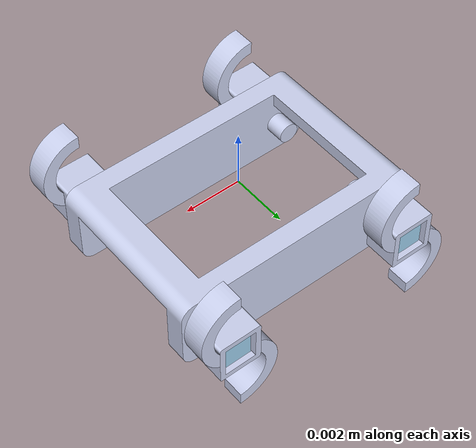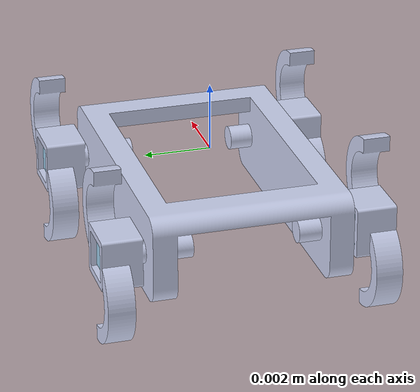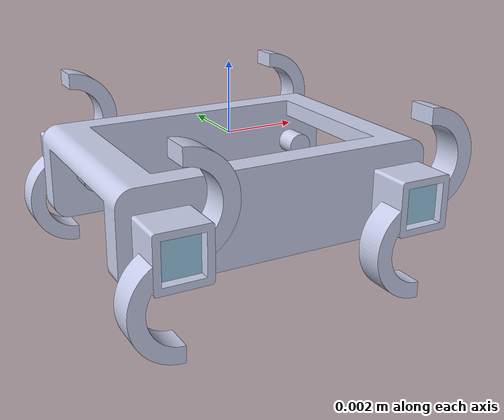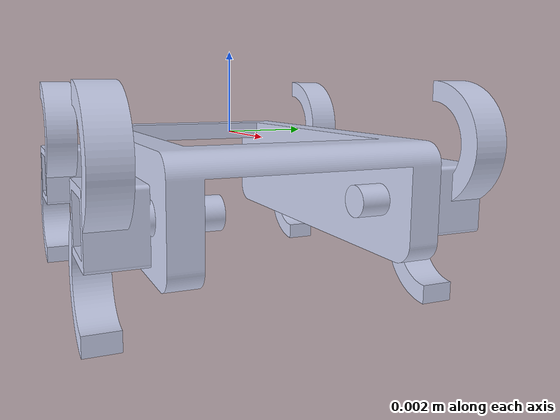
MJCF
<?xml version="1.0" ?>
<!-- Generated using onshape-to-robot -->
<!-- Onshape https://cad.onshape.com/documents/fb40679e5085125a52f9d8c2/w/bc70b1a5b80ef34e9536dda2/e/fa25152c06c6fd7e13daf977 -->
<mujoco model="mulit_milli_quad">
  <compiler angle="radian" meshdir="assets" autolimits="true"/>
  <default>
    <default class="mulit_milli_quad">
      <default class="magnet">
        <geom mass="9e-6" type="mesh" mesh="magnet" material="magnet_material"/>
      </default>
      <default class="leg">
        <geom mass="5e-7" type="mesh" mesh="right_leg_leg" material="right_leg_leg_material"/>
      </default>
      <default class="leg_box">
        <geom mass="3e-6" type="mesh" mesh="right_leg_box" material="right_leg_box_material"/>
      </default>
      <default class="body">
        <geom mass="5.3e-5" type="mesh" mesh="body" material="body_material"/>
      </default>
    </default>
  </default>
  <worldbody>
    <!-- Link body -->
    <body name="body" pos="0 0 0" quat="1 0 0 0" childclass="mulit_milli_quad">
      <freejoint name="body_freejoint"/>
      <geom class="body" pos="0 0 0" quat="1 0 0 0"/>
      <!-- Link right_leg_box -->
      <body name="right_leg_box" pos="0.00342 -0.00298 -0.00134126" quat="0.707107 0.707107 -0 -0">
        <joint axis="0 0 1" name="FR" type="hinge"/>
        <geom class="leg" pos="0 0 0" quat="6.12323e-17 0 0 1"/>
        <geom class="leg" pos="0 0 0" quat="1 0 0 0"/>
        <geom class="leg_box" pos="0 0 0" quat="1 0 0 0"/>
        <geom class="magnet" pos="0 0 0.00074" quat="0.707107 -0.707107 0 0"/>

      </body>
      <!-- Link right_leg_box_2 -->
      <body name="right_leg_box_2" pos="0.00342 0.00298 -0.00134126" quat="0 0 0.707107 0.707107">
        <joint axis="0 0 1" name="FL" type="hinge"/>
        <geom class="leg_box" pos="0 0 0" quat="1 0 0 0"/>
        <geom class="magnet" pos="4.33681e-19 0 0.00074" quat="3.83323e-17 -0 0.707107 0.707107"/>
        <geom class="leg" pos="-4.33681e-19 -4.77049e-18 0.002" quat="1.44518e-33 -0 1 -0"/>
        <geom class="leg" pos="-8.67362e-19 3.90313e-18 0.002" quat="-0 -1 -9.08232e-17 -0"/>

      </body>
      <!-- Link right_leg_box_3 -->
      <body name="right_leg_box_3" pos="-0.00342 -0.00298 -0.00134126" quat="0.707107 0.707107 -0 -0">
        <joint axis="0 0 1" name="BR" type="hinge"/>
        <geom class="magnet" pos="4.33681e-19 0 0.00074" quat="0.707107 -0.707107 0 0"/>
        <geom class="leg_box" pos="0 0 0" quat="1 0 0 0"/>
        <geom class="leg" pos="0 -2.1684e-19 0" quat="6.12323e-17 0 0 1"/>
        <geom class="leg" pos="0 0 0" quat="1 0 0 0"/>

      </body>
      <!-- Link right_leg_box_4 -->
      <body name="right_leg_box_4" pos="-0.00342 0.00298 -0.00134126" quat="0 0 0.707107 0.707107">
        <joint axis="0 0 1" name="BL" type="hinge"/>
        <geom class="leg" pos="-4.33681e-19 -3.90313e-18 0.002" quat="1.44518e-33 -0 1 -0"/>
        <geom class="magnet" pos="4.33681e-19 4.33681e-19 0.00074" quat="3.83323e-17 -0 0.707107 0.707107"/>
        <geom class="leg_box" pos="0 0 0" quat="1 0 0 0"/>
        <geom class="leg" pos="4.33681e-19 5.20417e-18 0.002" quat="-0 -1 -9.08232e-17 -0"/>

      </body>
    </body>
  </worldbody>
  <asset>
    <mesh file="magnet.stl"/>
    <mesh file="right_leg_leg.stl"/>
    <mesh file="right_leg_box.stl"/>
    <mesh file="body.stl"/>
    <material name="body_material" rgba="0.796078 0.823529 0.937255 1"/>
    <material name="right_leg_leg_material" rgba="0.796078 0.823529 0.937255 1"/>
    <material name="right_leg_box_material" rgba="0.796078 0.823529 0.937255 1"/>
    <material name="magnet_material" rgba="0.615686 0.811765 0.929412 1"/>
  </asset>
</mujoco>
